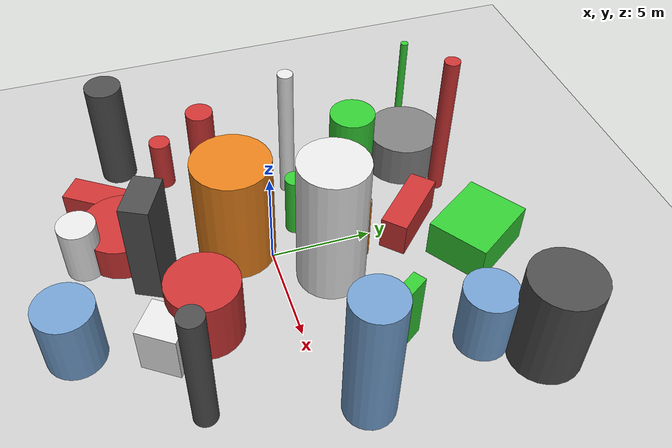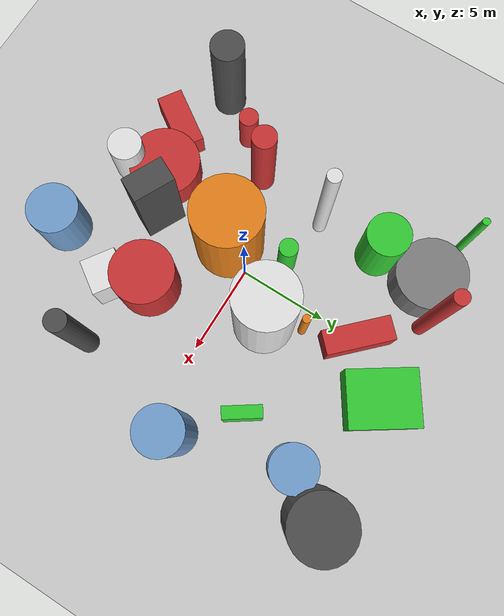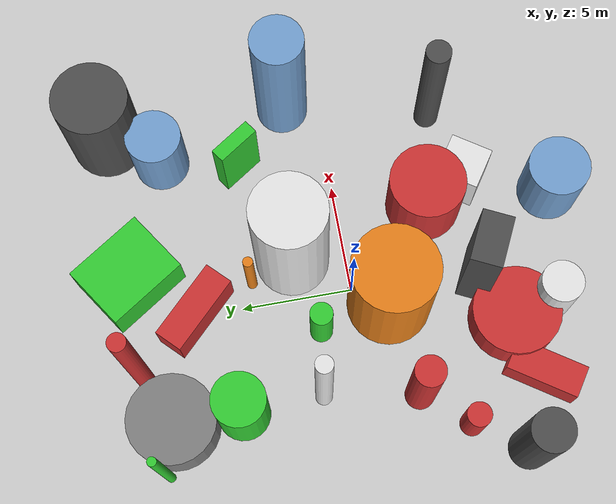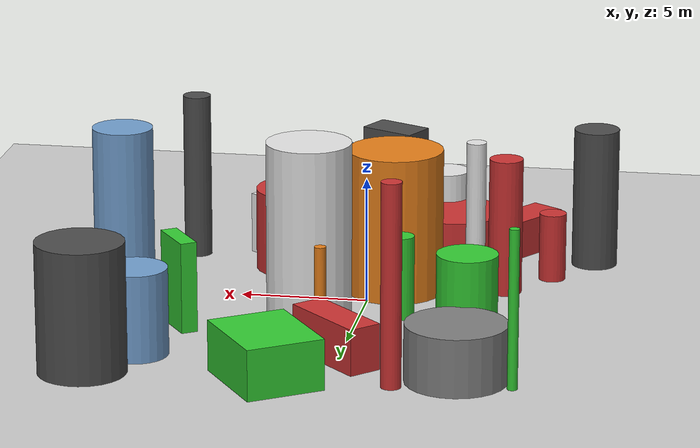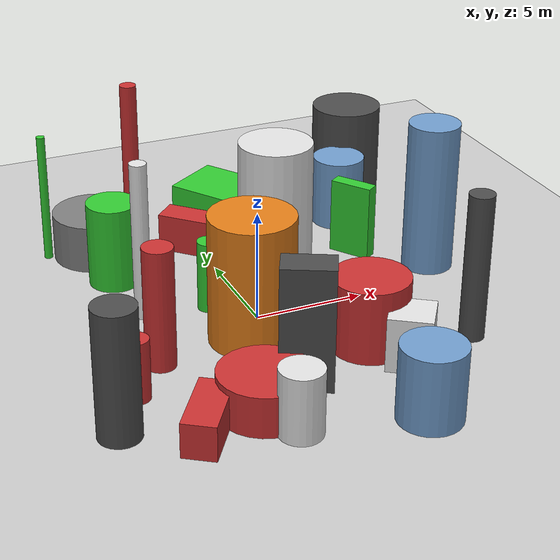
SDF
<?xml version='1.0'?>
<sdf version='1.6'>
  <world name='default'>
    <!-- Sun light -->
    <light name='sun' type='directional'>
      <cast_shadows>1</cast_shadows>
      <pose>0 0 10 0 0 0</pose>
      <diffuse>0.8 0.8 0.8 1</diffuse>
      <specular>0.2 0.2 0.2 1</specular>
      <attenuation>
        <range>1000</range>
        <constant>0.9</constant>
        <linear>0.01</linear>
        <quadratic>0.001</quadratic>
      </attenuation>
      <direction>-0.5 0.1 -0.9</direction>
    </light>

    <!-- Ground plane -->
    <model name='ground_plane'>
      <static>1</static>
      <link name='link'>
        <collision name='collision'>
          <geometry>
            <plane>
              <normal>0 0 1</normal>
              <size>100 100</size>
            </plane>
          </geometry>
          <surface>
            <contact>
              <collide_bitmask>65535</collide_bitmask>
              <ode/>
            </contact>
            <friction>
              <ode>
                <mu>100</mu>
                <mu2>50</mu2>
              </ode>
              <torsional><ode/></torsional>
            </friction>
            <bounce/>
          </surface>
          <max_contacts>10</max_contacts>
        </collision>
        <visual name='visual'>
          <cast_shadows>0</cast_shadows>
          <geometry>
            <plane>
              <normal>0 0 1</normal>
              <size>100 100</size>
            </plane>
          </geometry>
          <material>
            <script>
              <uri>file://media/materials/scripts/gazebo.material</uri>
              <n>Gazebo/Grey</n>
            </script>
          </material>
        </visual>
      </link>
    </model>

    <!-- Environment -->
    <magnetic_field>6e-06 2.3e-05 -4.2e-05</magnetic_field>
    <atmosphere type='adiabatic'/>
    <physics name='default_physics' default='0' type='ode'>
      <gravity>0 0 -9.8</gravity>
      <max_step_size>0.004</max_step_size>
      <real_time_factor>1</real_time_factor>
      <real_time_update_rate>250</real_time_update_rate>
    </physics>
    <scene>
      <ambient>0.4 0.4 0.4 1</ambient>
      <background>0.7 0.7 0.7 1</background>
      <shadows>1</shadows>
    </scene>
    <wind/>
    <spherical_coordinates>
      <surface_model>EARTH_WGS84</surface_model>
      <latitude_deg>0</latitude_deg>
      <longitude_deg>0</longitude_deg>
      <elevation>0</elevation>
      <heading_deg>0</heading_deg>
    </spherical_coordinates>

    <!-- ============ OBSTACLES (26) ============ -->
    <model name='obs_00'>
      <static>1</static>
      <link name='link'>
        <visual name='visual'>
          <geometry>
            <box>
              <size>2.2689 1.3789 5.5408</size>
            </box>
          </geometry>
          <material>
            <script>
              <n>Gazebo/DarkGrey</n>
              <uri>file://media/materials/scripts/gazebo.material</uri>
            </script>
            <ambient>0.3 0.3 0.3 1</ambient>
          </material>
        </visual>
        <collision name='collision'>
          <geometry>
            <box>
              <size>2.2689 1.3789 5.5408</size>
            </box>
          </geometry>
          <max_contacts>10</max_contacts>
          <surface>
            <contact><ode/></contact>
            <bounce/>
            <friction>
              <ode><mu>1</mu><mu2>1</mu2></ode>
              <torsional><ode/></torsional>
            </friction>
          </surface>
        </collision>
      </link>
      <pose>-0.2872 -5.7251 2.7704 0 0 2.6795</pose>
    </model>

    <model name='obs_01'>
      <static>1</static>
      <link name='link'>
        <visual name='visual'>
          <geometry>
            <cylinder>
              <radius>0.9336</radius>
              <length>2.9368</length>
            </cylinder>
          </geometry>
          <material>
            <script>
              <n>Gazebo/White</n>
              <uri>file://media/materials/scripts/gazebo.material</uri>
            </script>
            <ambient>0.9 0.9 0.9 1</ambient>
          </material>
        </visual>
        <collision name='collision'>
          <geometry>
            <cylinder>
              <radius>0.9336</radius>
              <length>2.9368</length>
            </cylinder>
          </geometry>
          <max_contacts>10</max_contacts>
          <surface>
            <contact><ode/></contact>
            <bounce/>
            <friction>
              <ode><mu>1</mu><mu2>1</mu2></ode>
              <torsional><ode/></torsional>
            </friction>
          </surface>
        </collision>
      </link>
      <pose>-1.9792 -8.8273 1.4684 0 0 0.2900</pose>
    </model>

    <model name='obs_02'>
      <static>1</static>
      <link name='link'>
        <visual name='visual'>
          <geometry>
            <cylinder>
              <radius>0.3920</radius>
              <length>7.8586</length>
            </cylinder>
          </geometry>
          <material>
            <script>
              <n>Gazebo/Red</n>
              <uri>file://media/materials/scripts/gazebo.material</uri>
            </script>
            <ambient>0.8 0.2 0.2 1</ambient>
          </material>
        </visual>
        <collision name='collision'>
          <geometry>
            <cylinder>
              <radius>0.3920</radius>
              <length>7.8586</length>
            </cylinder>
          </geometry>
          <max_contacts>10</max_contacts>
          <surface>
            <contact><ode/></contact>
            <bounce/>
            <friction>
              <ode><mu>1</mu><mu2>1</mu2></ode>
              <torsional><ode/></torsional>
            </friction>
          </surface>
        </collision>
      </link>
      <pose>-2.4205 9.7062 3.9293 0 0 1.0479</pose>
    </model>

    <model name='obs_03'>
      <static>1</static>
      <link name='link'>
        <visual name='visual'>
          <geometry>
            <cylinder>
              <radius>1.1706</radius>
              <length>3.9938</length>
            </cylinder>
          </geometry>
          <material>
            <script>
              <n>Gazebo/Green</n>
              <uri>file://media/materials/scripts/gazebo.material</uri>
            </script>
            <ambient>0.2 0.8 0.2 1</ambient>
          </material>
        </visual>
        <collision name='collision'>
          <geometry>
            <cylinder>
              <radius>1.1706</radius>
              <length>3.9938</length>
            </cylinder>
          </geometry>
          <max_contacts>10</max_contacts>
          <surface>
            <contact><ode/></contact>
            <bounce/>
            <friction>
              <ode><mu>1</mu><mu2>1</mu2></ode>
              <torsional><ode/></torsional>
            </friction>
          </surface>
        </collision>
      </link>
      <pose>-4.6959 5.6814 1.9969 0 0 2.3286</pose>
    </model>

    <model name='obs_04'>
      <static>1</static>
      <link name='link'>
        <visual name='visual'>
          <geometry>
            <cylinder>
              <radius>1.8983</radius>
              <length>5.8371</length>
            </cylinder>
          </geometry>
          <material>
            <script>
              <n>Gazebo/Orange</n>
              <uri>file://media/materials/scripts/gazebo.material</uri>
            </script>
            <ambient>0.9 0.5 0.1 1</ambient>
          </material>
        </visual>
        <collision name='collision'>
          <geometry>
            <cylinder>
              <radius>1.8983</radius>
              <length>5.8371</length>
            </cylinder>
          </geometry>
          <max_contacts>10</max_contacts>
          <surface>
            <contact><ode/></contact>
            <bounce/>
            <friction>
              <ode><mu>1</mu><mu2>1</mu2></ode>
              <torsional><ode/></torsional>
            </friction>
          </surface>
        </collision>
      </link>
      <pose>-0.8998 -1.5399 2.9186 0 0 0.3515</pose>
    </model>

    <model name='obs_05'>
      <static>1</static>
      <link name='link'>
        <visual name='visual'>
          <geometry>
            <cylinder>
              <radius>1.6940</radius>
              <length>5.0776</length>
            </cylinder>
          </geometry>
          <material>
            <script>
              <n>Gazebo/DarkGrey</n>
              <uri>file://media/materials/scripts/gazebo.material</uri>
            </script>
            <ambient>0.3 0.3 0.3 1</ambient>
          </material>
        </visual>
        <collision name='collision'>
          <geometry>
            <cylinder>
              <radius>1.6940</radius>
              <length>5.0776</length>
            </cylinder>
          </geometry>
          <max_contacts>10</max_contacts>
          <surface>
            <contact><ode/></contact>
            <bounce/>
            <friction>
              <ode><mu>1</mu><mu2>1</mu2></ode>
              <torsional><ode/></torsional>
            </friction>
          </surface>
        </collision>
      </link>
      <pose>9.1464 9.9085 2.5388 0 0 1.7140</pose>
    </model>

    <model name='obs_06'>
      <static>1</static>
      <link name='link'>
        <visual name='visual'>
          <geometry>
            <cylinder>
              <radius>0.2274</radius>
              <length>3.5526</length>
            </cylinder>
          </geometry>
          <material>
            <script>
              <n>Gazebo/Orange</n>
              <uri>file://media/materials/scripts/gazebo.material</uri>
            </script>
            <ambient>0.9 0.5 0.1 1</ambient>
          </material>
        </visual>
        <collision name='collision'>
          <geometry>
            <cylinder>
              <radius>0.2274</radius>
              <length>3.5526</length>
            </cylinder>
          </geometry>
          <max_contacts>10</max_contacts>
          <surface>
            <contact><ode/></contact>
            <bounce/>
            <friction>
              <ode><mu>1</mu><mu2>1</mu2></ode>
              <torsional><ode/></torsional>
            </friction>
          </surface>
        </collision>
      </link>
      <pose>1.1154 4.3682 1.7763 0 0 1.3502</pose>
    </model>

    <model name='obs_07'>
      <static>1</static>
      <link name='link'>
        <visual name='visual'>
          <geometry>
            <cylinder>
              <radius>0.5386</radius>
              <length>2.7467</length>
            </cylinder>
          </geometry>
          <material>
            <script>
              <n>Gazebo/Red</n>
              <uri>file://media/materials/scripts/gazebo.material</uri>
            </script>
            <ambient>0.8 0.2 0.2 1</ambient>
          </material>
        </visual>
        <collision name='collision'>
          <geometry>
            <cylinder>
              <radius>0.5386</radius>
              <length>2.7467</length>
            </cylinder>
          </geometry>
          <max_contacts>10</max_contacts>
          <surface>
            <contact><ode/></contact>
            <bounce/>
            <friction>
              <ode><mu>1</mu><mu2>1</mu2></ode>
              <torsional><ode/></torsional>
            </friction>
          </surface>
        </collision>
      </link>
      <pose>-6.9041 -4.0658 1.3734 0 0 2.8241</pose>
    </model>

    <model name='obs_08'>
      <static>1</static>
      <link name='link'>
        <visual name='visual'>
          <geometry>
            <cylinder>
              <radius>1.1858</radius>
              <length>7.1230</length>
            </cylinder>
          </geometry>
          <material>
            <script>
              <n>Gazebo/Blue</n>
              <uri>file://media/materials/scripts/gazebo.material</uri>
            </script>
            <ambient>0.447 0.624 0.812 1</ambient>
          </material>
        </visual>
        <collision name='collision'>
          <geometry>
            <cylinder>
              <radius>1.1858</radius>
              <length>7.1230</length>
            </cylinder>
          </geometry>
          <max_contacts>10</max_contacts>
          <surface>
            <contact><ode/></contact>
            <bounce/>
            <friction>
              <ode><mu>1</mu><mu2>1</mu2></ode>
              <torsional><ode/></torsional>
            </friction>
          </surface>
        </collision>
      </link>
      <pose>9.3742 1.5836 3.5615 0 0 1.1111</pose>
    </model>

    <model name='obs_09'>
      <static>1</static>
      <link name='link'>
        <visual name='visual'>
          <geometry>
            <box>
              <size>3.7402 1.3286 1.8125</size>
            </box>
          </geometry>
          <material>
            <script>
              <n>Gazebo/Red</n>
              <uri>file://media/materials/scripts/gazebo.material</uri>
            </script>
            <ambient>0.8 0.2 0.2 1</ambient>
          </material>
        </visual>
        <collision name='collision'>
          <geometry>
            <box>
              <size>3.7402 1.3286 1.8125</size>
            </box>
          </geometry>
          <max_contacts>10</max_contacts>
          <surface>
            <contact><ode/></contact>
            <bounce/>
            <friction>
              <ode><mu>1</mu><mu2>1</mu2></ode>
              <torsional><ode/></torsional>
            </friction>
          </surface>
        </collision>
      </link>
      <pose>0.0570 7.0544 0.9063 0 0 2.3546</pose>
    </model>

    <model name='obs_10'>
      <static>1</static>
      <link name='link'>
        <visual name='visual'>
          <geometry>
            <cylinder>
              <radius>0.1959</radius>
              <length>6.1560</length>
            </cylinder>
          </geometry>
          <material>
            <script>
              <n>Gazebo/Green</n>
              <uri>file://media/materials/scripts/gazebo.material</uri>
            </script>
            <ambient>0.2 0.8 0.2 1</ambient>
          </material>
        </visual>
        <collision name='collision'>
          <geometry>
            <cylinder>
              <radius>0.1959</radius>
              <length>6.1560</length>
            </cylinder>
          </geometry>
          <max_contacts>10</max_contacts>
          <surface>
            <contact><ode/></contact>
            <bounce/>
            <friction>
              <ode><mu>1</mu><mu2>1</mu2></ode>
              <torsional><ode/></torsional>
            </friction>
          </surface>
        </collision>
      </link>
      <pose>-6.8513 9.2156 3.0780 0 0 2.7691</pose>
    </model>

    <model name='obs_11'>
      <static>1</static>
      <link name='link'>
        <visual name='visual'>
          <geometry>
            <cylinder>
              <radius>0.9117</radius>
              <length>5.6893</length>
            </cylinder>
          </geometry>
          <material>
            <script>
              <n>Gazebo/DarkGrey</n>
              <uri>file://media/materials/scripts/gazebo.material</uri>
            </script>
            <ambient>0.3 0.3 0.3 1</ambient>
          </material>
        </visual>
        <collision name='collision'>
          <geometry>
            <cylinder>
              <radius>0.9117</radius>
              <length>5.6893</length>
            </cylinder>
          </geometry>
          <max_contacts>10</max_contacts>
          <surface>
            <contact><ode/></contact>
            <bounce/>
            <friction>
              <ode><mu>1</mu><mu2>1</mu2></ode>
              <torsional><ode/></torsional>
            </friction>
          </surface>
        </collision>
      </link>
      <pose>-8.3978 -6.2835 2.8447 0 0 2.4579</pose>
    </model>

    <model name='obs_12'>
      <static>1</static>
      <link name='link'>
        <visual name='visual'>
          <geometry>
            <box>
              <size>1.4338 3.2558 1.5405</size>
            </box>
          </geometry>
          <material>
            <script>
              <n>Gazebo/Red</n>
              <uri>file://media/materials/scripts/gazebo.material</uri>
            </script>
            <ambient>0.8 0.2 0.2 1</ambient>
          </material>
        </visual>
        <collision name='collision'>
          <geometry>
            <box>
              <size>1.4338 3.2558 1.5405</size>
            </box>
          </geometry>
          <max_contacts>10</max_contacts>
          <surface>
            <contact><ode/></contact>
            <bounce/>
            <friction>
              <ode><mu>1</mu><mu2>1</mu2></ode>
              <torsional><ode/></torsional>
            </friction>
          </surface>
        </collision>
      </link>
      <pose>-5.2959 -7.6023 0.7702 0 0 2.5470</pose>
    </model>

    <model name='obs_13'>
      <static>1</static>
      <link name='link'>
        <visual name='visual'>
          <geometry>
            <cylinder>
              <radius>0.5615</radius>
              <length>6.7161</length>
            </cylinder>
          </geometry>
          <material>
            <script>
              <n>Gazebo/DarkGrey</n>
              <uri>file://media/materials/scripts/gazebo.material</uri>
            </script>
            <ambient>0.3 0.3 0.3 1</ambient>
          </material>
        </visual>
        <collision name='collision'>
          <geometry>
            <cylinder>
              <radius>0.5615</radius>
              <length>6.7161</length>
            </cylinder>
          </geometry>
          <max_contacts>10</max_contacts>
          <surface>
            <contact><ode/></contact>
            <bounce/>
            <friction>
              <ode><mu>1</mu><mu2>1</mu2></ode>
              <torsional><ode/></torsional>
            </friction>
          </surface>
        </collision>
      </link>
      <pose>7.8057 -5.0757 3.3581 0 0 2.6974</pose>
    </model>

    <model name='obs_14'>
      <static>1</static>
      <link name='link'>
        <visual name='visual'>
          <geometry>
            <cylinder>
              <radius>1.6680</radius>
              <length>7.0993</length>
            </cylinder>
          </geometry>
          <material>
            <script>
              <n>Gazebo/White</n>
              <uri>file://media/materials/scripts/gazebo.material</uri>
            </script>
            <ambient>0.9 0.9 0.9 1</ambient>
          </material>
        </visual>
        <collision name='collision'>
          <geometry>
            <cylinder>
              <radius>1.6680</radius>
              <length>7.0993</length>
            </cylinder>
          </geometry>
          <max_contacts>10</max_contacts>
          <surface>
            <contact><ode/></contact>
            <bounce/>
            <friction>
              <ode><mu>1</mu><mu2>1</mu2></ode>
              <torsional><ode/></torsional>
            </friction>
          </surface>
        </collision>
      </link>
      <pose>1.8904 2.3876 3.5496 0 0 1.0985</pose>
    </model>

    <model name='obs_15'>
      <static>1</static>
      <link name='link'>
        <visual name='visual'>
          <geometry>
            <cylinder>
              <radius>0.5073</radius>
              <length>3.2978</length>
            </cylinder>
          </geometry>
          <material>
            <script>
              <n>Gazebo/Green</n>
              <uri>file://media/materials/scripts/gazebo.material</uri>
            </script>
            <ambient>0.2 0.8 0.2 1</ambient>
          </material>
        </visual>
        <collision name='collision'>
          <geometry>
            <cylinder>
              <radius>0.5073</radius>
              <length>3.2978</length>
            </cylinder>
          </geometry>
          <max_contacts>10</max_contacts>
          <surface>
            <contact><ode/></contact>
            <bounce/>
            <friction>
              <ode><mu>1</mu><mu2>1</mu2></ode>
              <torsional><ode/></torsional>
            </friction>
          </surface>
        </collision>
      </link>
      <pose>-1.6155 1.6734 1.6489 0 0 0.0743</pose>
    </model>

    <model name='obs_16'>
      <static>1</static>
      <link name='link'>
        <visual name='visual'>
          <geometry>
            <cylinder>
              <radius>0.6664</radius>
              <length>5.4904</length>
            </cylinder>
          </geometry>
          <material>
            <script>
              <n>Gazebo/Red</n>
              <uri>file://media/materials/scripts/gazebo.material</uri>
            </script>
            <ambient>0.8 0.2 0.2 1</ambient>
          </material>
        </visual>
        <collision name='collision'>
          <geometry>
            <cylinder>
              <radius>0.6664</radius>
              <length>5.4904</length>
            </cylinder>
          </geometry>
          <max_contacts>10</max_contacts>
          <surface>
            <contact><ode/></contact>
            <bounce/>
            <friction>
              <ode><mu>1</mu><mu2>1</mu2></ode>
              <torsional><ode/></torsional>
            </friction>
          </surface>
        </collision>
      </link>
      <pose>-5.2263 -2.0843 2.7452 0 0 3.0376</pose>
    </model>

    <model name='obs_17'>
      <static>1</static>
      <link name='link'>
        <visual name='visual'>
          <geometry>
            <cylinder>
              <radius>1.7108</radius>
              <length>3.3180</length>
            </cylinder>
          </geometry>
          <material>
            <script>
              <n>Gazebo/Red</n>
              <uri>file://media/materials/scripts/gazebo.material</uri>
            </script>
            <ambient>0.8 0.2 0.2 1</ambient>
          </material>
        </visual>
        <collision name='collision'>
          <geometry>
            <cylinder>
              <radius>1.7108</radius>
              <length>3.3180</length>
            </cylinder>
          </geometry>
          <max_contacts>10</max_contacts>
          <surface>
            <contact><ode/></contact>
            <bounce/>
            <friction>
              <ode><mu>1</mu><mu2>1</mu2></ode>
              <torsional><ode/></torsional>
            </friction>
          </surface>
        </collision>
      </link>
      <pose>3.4338 -4.0001 1.6590 0 0 2.1348</pose>
    </model>

    <model name='obs_18'>
      <static>1</static>
      <link name='link'>
        <visual name='visual'>
          <geometry>
            <cylinder>
              <radius>1.9452</radius>
              <length>2.2500</length>
            </cylinder>
          </geometry>
          <material>
            <script>
              <n>Gazebo/Grey</n>
              <uri>file://media/materials/scripts/gazebo.material</uri>
            </script>
            <ambient>0.5 0.5 0.5 1</ambient>
          </material>
        </visual>
        <collision name='collision'>
          <geometry>
            <cylinder>
              <radius>1.9452</radius>
              <length>2.2500</length>
            </cylinder>
          </geometry>
          <max_contacts>10</max_contacts>
          <surface>
            <contact><ode/></contact>
            <bounce/>
            <friction>
              <ode><mu>1</mu><mu2>1</mu2></ode>
              <torsional><ode/></torsional>
            </friction>
          </surface>
        </collision>
      </link>
      <pose>-4.6960 8.6652 1.1250 0 0 0.3624</pose>
    </model>

    <model name='obs_19'>
      <static>1</static>
      <link name='link'>
        <visual name='visual'>
          <geometry>
            <cylinder>
              <radius>1.2537</radius>
              <length>3.4198</length>
            </cylinder>
          </geometry>
          <material>
            <script>
              <n>Gazebo/Blue</n>
              <uri>file://media/materials/scripts/gazebo.material</uri>
            </script>
            <ambient>0.447 0.624 0.812 1</ambient>
          </material>
        </visual>
        <collision name='collision'>
          <geometry>
            <cylinder>
              <radius>1.2537</radius>
              <length>3.4198</length>
            </cylinder>
          </geometry>
          <max_contacts>10</max_contacts>
          <surface>
            <contact><ode/></contact>
            <bounce/>
            <friction>
              <ode><mu>1</mu><mu2>1</mu2></ode>
              <torsional><ode/></torsional>
            </friction>
          </surface>
        </collision>
      </link>
      <pose>7.6173 7.5854 1.7099 0 0 0.1202</pose>
    </model>

    <model name='obs_20'>
      <static>1</static>
      <link name='link'>
        <visual name='visual'>
          <geometry>
            <cylinder>
              <radius>1.9708</radius>
              <length>1.8095</length>
            </cylinder>
          </geometry>
          <material>
            <script>
              <n>Gazebo/Red</n>
              <uri>file://media/materials/scripts/gazebo.material</uri>
            </script>
            <ambient>0.8 0.2 0.2 1</ambient>
          </material>
        </visual>
        <collision name='collision'>
          <geometry>
            <cylinder>
              <radius>1.9708</radius>
              <length>1.8095</length>
            </cylinder>
          </geometry>
          <max_contacts>10</max_contacts>
          <surface>
            <contact><ode/></contact>
            <bounce/>
            <friction>
              <ode><mu>1</mu><mu2>1</mu2></ode>
              <torsional><ode/></torsional>
            </friction>
          </surface>
        </collision>
      </link>
      <pose>-2.6095 -6.8451 0.9048 0 0 1.3710</pose>
    </model>

    <model name='obs_21'>
      <static>1</static>
      <link name='link'>
        <visual name='visual'>
          <geometry>
            <box>
              <size>0.6554 2.0262 3.5996</size>
            </box>
          </geometry>
          <material>
            <script>
              <n>Gazebo/Green</n>
              <uri>file://media/materials/scripts/gazebo.material</uri>
            </script>
            <ambient>0.2 0.8 0.2 1</ambient>
          </material>
        </visual>
        <collision name='collision'>
          <geometry>
            <box>
              <size>0.6554 2.0262 3.5996</size>
            </box>
          </geometry>
          <max_contacts>10</max_contacts>
          <surface>
            <contact><ode/></contact>
            <bounce/>
            <friction>
              <ode><mu>1</mu><mu2>1</mu2></ode>
              <torsional><ode/></torsional>
            </friction>
          </surface>
        </collision>
      </link>
      <pose>6.6749 4.0708 1.7998 0 0 0.5972</pose>
    </model>

    <model name='obs_22'>
      <static>1</static>
      <link name='link'>
        <visual name='visual'>
          <geometry>
            <box>
              <size>3.7909 3.0796 1.9852</size>
            </box>
          </geometry>
          <material>
            <script>
              <n>Gazebo/Green</n>
              <uri>file://media/materials/scripts/gazebo.material</uri>
            </script>
            <ambient>0.2 0.8 0.2 1</ambient>
          </material>
        </visual>
        <collision name='collision'>
          <geometry>
            <box>
              <size>3.7909 3.0796 1.9852</size>
            </box>
          </geometry>
          <max_contacts>10</max_contacts>
          <surface>
            <contact><ode/></contact>
            <bounce/>
            <friction>
              <ode><mu>1</mu><mu2>1</mu2></ode>
              <torsional><ode/></torsional>
            </friction>
          </surface>
        </collision>
      </link>
      <pose>2.2336 9.7447 0.9926 0 0 2.1578</pose>
    </model>

    <model name='obs_23'>
      <static>1</static>
      <link name='link'>
        <visual name='visual'>
          <geometry>
            <cylinder>
              <radius>1.3788</radius>
              <length>3.3114</length>
            </cylinder>
          </geometry>
          <material>
            <script>
              <n>Gazebo/Blue</n>
              <uri>file://media/materials/scripts/gazebo.material</uri>
            </script>
            <ambient>0.447 0.624 0.812 1</ambient>
          </material>
        </visual>
        <collision name='collision'>
          <geometry>
            <cylinder>
              <radius>1.3788</radius>
              <length>3.3114</length>
            </cylinder>
          </geometry>
          <max_contacts>10</max_contacts>
          <surface>
            <contact><ode/></contact>
            <bounce/>
            <friction>
              <ode><mu>1</mu><mu2>1</mu2></ode>
              <torsional><ode/></torsional>
            </friction>
          </surface>
        </collision>
      </link>
      <pose>3.0795 -9.8435 1.6557 0 0 0.2198</pose>
    </model>

    <model name='obs_24'>
      <static>1</static>
      <link name='link'>
        <visual name='visual'>
          <geometry>
            <cylinder>
              <radius>0.3806</radius>
              <length>7.3003</length>
            </cylinder>
          </geometry>
          <material>
            <script>
              <n>Gazebo/White</n>
              <uri>file://media/materials/scripts/gazebo.material</uri>
            </script>
            <ambient>0.9 0.9 0.9 1</ambient>
          </material>
        </visual>
        <collision name='collision'>
          <geometry>
            <cylinder>
              <radius>0.3806</radius>
              <length>7.3003</length>
            </cylinder>
          </geometry>
          <max_contacts>10</max_contacts>
          <surface>
            <contact><ode/></contact>
            <bounce/>
            <friction>
              <ode><mu>1</mu><mu2>1</mu2></ode>
              <torsional><ode/></torsional>
            </friction>
          </surface>
        </collision>
      </link>
      <pose>-4.5530 2.0966 3.6502 0 0 2.0841</pose>
    </model>

    <model name='obs_25'>
      <static>1</static>
      <link name='link'>
        <visual name='visual'>
          <geometry>
            <box>
              <size>1.9294 1.9084 2.4783</size>
            </box>
          </geometry>
          <material>
            <script>
              <n>Gazebo/White</n>
              <uri>file://media/materials/scripts/gazebo.material</uri>
            </script>
            <ambient>0.9 0.9 0.9 1</ambient>
          </material>
        </visual>
        <collision name='collision'>
          <geometry>
            <box>
              <size>1.9294 1.9084 2.4783</size>
            </box>
          </geometry>
          <max_contacts>10</max_contacts>
          <surface>
            <contact><ode/></contact>
            <bounce/>
            <friction>
              <ode><mu>1</mu><mu2>1</mu2></ode>
              <torsional><ode/></torsional>
            </friction>
          </surface>
        </collision>
      </link>
      <pose>4.3522 -5.9281 1.2391 0 0 0.9716</pose>
    </model>

    <!-- GUI camera -->
    <gui fullscreen='0'>
      <camera name='user_camera'>
        <pose>-15 0 18 0 0.85 0.15</pose>
        <view_controller>orbit</view_controller>
        <projection_type>perspective</projection_type>
      </camera>
    </gui>
  </world>
</sdf>
